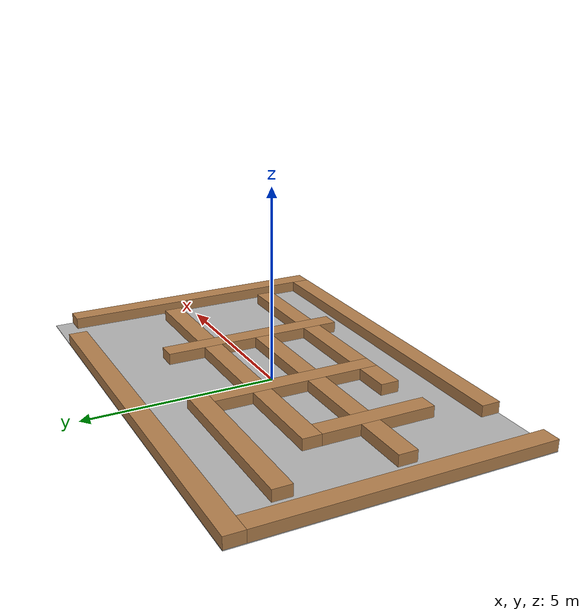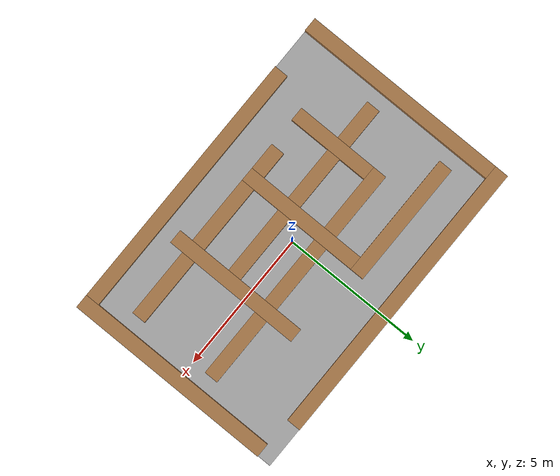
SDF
<?xml version='1.0'?>
<sdf version='1.7'><world name='default'>
  <gravity>0 0 -9.81</gravity>
  <scene><ambient>0.4 0.4 0.4 1</ambient></scene>
  <light name='sun' type='directional'>
    <pose>0 0 10 0 0 0</pose><diffuse>1 1 1 1</diffuse><specular>0.1 0.1 0.1 1</specular>
    <attenuation><range>120</range><constant>0.9</constant><linear>0.01</linear><quadratic>0.001</quadratic></attenuation>
    <direction>-0.5 0.5 -1</direction>
  </light>

    <model name='floor'><pose>0 0 -0.01 0 0 0</pose><static>true</static>
    <link name='l'>
      <collision name='c'><geometry><box><size>12.0 8.0 0.02</size></box></geometry></collision>
      <visual name='v'><geometry><box><size>12.0 8.0 0.02</size></box></geometry><material><ambient>0.30 0.30 0.30 1</ambient><diffuse>0.70 0.70 0.70 1</diffuse><specular>0.10 0.10 0.10 1</specular></material></visual>
    </link></model>

    <model name='wall_0_0'><pose>-0.75 3.75 0.15 0 0 0</pose><static>true</static>
    <link name='l'>
      <collision name='c'><geometry><box><size>10.5 0.5 0.3</size></box></geometry></collision>
      <visual name='v'><geometry><box><size>10.5 0.5 0.3</size></box></geometry><material><ambient>0.30 0.20 0.10 1</ambient><diffuse>0.70 0.50 0.30 1</diffuse><specular>0.10 0.10 0.10 1</specular></material></visual>
    </link></model>
    <model name='wall_1_0'><pose>-5.75 -0.25 0.15 0 0 0</pose><static>true</static>
    <link name='l'>
      <collision name='c'><geometry><box><size>0.5 7.5 0.3</size></box></geometry></collision>
      <visual name='v'><geometry><box><size>0.5 7.5 0.3</size></box></geometry><material><ambient>0.30 0.20 0.10 1</ambient><diffuse>0.70 0.50 0.30 1</diffuse><specular>0.10 0.10 0.10 1</specular></material></visual>
    </link></model>
    <model name='wall_1_23'><pose>5.75 -0.25 0.15 0 0 0</pose><static>true</static>
    <link name='l'>
      <collision name='c'><geometry><box><size>0.5 7.5 0.3</size></box></geometry></collision>
      <visual name='v'><geometry><box><size>0.5 7.5 0.3</size></box></geometry><material><ambient>0.30 0.20 0.10 1</ambient><diffuse>0.70 0.50 0.30 1</diffuse><specular>0.10 0.10 0.10 1</specular></material></visual>
    </link></model>
    <model name='wall_3_2'><pose>-2.75 2.25 0.15 0 0 0</pose><static>true</static>
    <link name='l'>
      <collision name='c'><geometry><box><size>4.5 0.5 0.3</size></box></geometry></collision>
      <visual name='v'><geometry><box><size>4.5 0.5 0.3</size></box></geometry><material><ambient>0.30 0.20 0.10 1</ambient><diffuse>0.70 0.50 0.30 1</diffuse><specular>0.10 0.10 0.10 1</specular></material></visual>
    </link></model>
    <model name='wall_4_10'><pose>-0.75 -0.25 0.15 0 0 0</pose><static>true</static>
    <link name='l'>
      <collision name='c'><geometry><box><size>0.5 4.5 0.3</size></box></geometry></collision>
      <visual name='v'><geometry><box><size>0.5 4.5 0.3</size></box></geometry><material><ambient>0.30 0.20 0.10 1</ambient><diffuse>0.70 0.50 0.30 1</diffuse><specular>0.10 0.10 0.10 1</specular></material></visual>
    </link></model>
    <model name='wall_4_16'><pose>2.25 -0.5 0.15 0 0 0</pose><static>true</static>
    <link name='l'>
      <collision name='c'><geometry><box><size>0.5 5.0 0.3</size></box></geometry></collision>
      <visual name='v'><geometry><box><size>0.5 5.0 0.3</size></box></geometry><material><ambient>0.30 0.20 0.10 1</ambient><diffuse>0.70 0.50 0.30 1</diffuse><specular>0.10 0.10 0.10 1</specular></material></visual>
    </link></model>
    <model name='wall_6_5'><pose>-2.25 0.75 0.15 0 0 0</pose><static>true</static>
    <link name='l'>
      <collision name='c'><geometry><box><size>2.5 0.5 0.3</size></box></geometry></collision>
      <visual name='v'><geometry><box><size>2.5 0.5 0.3</size></box></geometry><material><ambient>0.30 0.20 0.10 1</ambient><diffuse>0.70 0.50 0.30 1</diffuse><specular>0.10 0.10 0.10 1</specular></material></visual>
    </link></model>
    <model name='wall_6_11'><pose>0.75 0.75 0.15 0 0 0</pose><static>true</static>
    <link name='l'>
      <collision name='c'><geometry><box><size>2.5 0.5 0.3</size></box></geometry></collision>
      <visual name='v'><geometry><box><size>2.5 0.5 0.3</size></box></geometry><material><ambient>0.30 0.20 0.10 1</ambient><diffuse>0.70 0.50 0.30 1</diffuse><specular>0.10 0.10 0.10 1</specular></material></visual>
    </link></model>
    <model name='wall_6_17'><pose>3.75 0.75 0.15 0 0 0</pose><static>true</static>
    <link name='l'>
      <collision name='c'><geometry><box><size>2.5 0.5 0.3</size></box></geometry></collision>
      <visual name='v'><geometry><box><size>2.5 0.5 0.3</size></box></geometry><material><ambient>0.30 0.20 0.10 1</ambient><diffuse>0.70 0.50 0.30 1</diffuse><specular>0.10 0.10 0.10 1</specular></material></visual>
    </link></model>
    <model name='wall_7_5'><pose>-3.25 -1.0 0.15 0 0 0</pose><static>true</static>
    <link name='l'>
      <collision name='c'><geometry><box><size>0.5 3.0 0.3</size></box></geometry></collision>
      <visual name='v'><geometry><box><size>0.5 3.0 0.3</size></box></geometry><material><ambient>0.30 0.20 0.10 1</ambient><diffuse>0.70 0.50 0.30 1</diffuse><specular>0.10 0.10 0.10 1</specular></material></visual>
    </link></model>
    <model name='wall_9_2'><pose>-4.25 -0.75 0.15 0 0 0</pose><static>true</static>
    <link name='l'>
      <collision name='c'><geometry><box><size>1.5 0.5 0.3</size></box></geometry></collision>
      <visual name='v'><geometry><box><size>1.5 0.5 0.3</size></box></geometry><material><ambient>0.30 0.20 0.10 1</ambient><diffuse>0.70 0.50 0.30 1</diffuse><specular>0.10 0.10 0.10 1</specular></material></visual>
    </link></model>
    <model name='wall_9_6'><pose>-2.0 -0.75 0.15 0 0 0</pose><static>true</static>
    <link name='l'>
      <collision name='c'><geometry><box><size>2.0 0.5 0.3</size></box></geometry></collision>
      <visual name='v'><geometry><box><size>2.0 0.5 0.3</size></box></geometry><material><ambient>0.30 0.20 0.10 1</ambient><diffuse>0.70 0.50 0.30 1</diffuse><specular>0.10 0.10 0.10 1</specular></material></visual>
    </link></model>
    <model name='wall_9_11'><pose>0.75 -0.75 0.15 0 0 0</pose><static>true</static>
    <link name='l'>
      <collision name='c'><geometry><box><size>2.5 0.5 0.3</size></box></geometry></collision>
      <visual name='v'><geometry><box><size>2.5 0.5 0.3</size></box></geometry><material><ambient>0.30 0.20 0.10 1</ambient><diffuse>0.70 0.50 0.30 1</diffuse><specular>0.10 0.10 0.10 1</specular></material></visual>
    </link></model>
    <model name='wall_12_8'><pose>-1.5 -2.25 0.15 0 0 0</pose><static>true</static>
    <link name='l'>
      <collision name='c'><geometry><box><size>1.0 0.5 0.3</size></box></geometry></collision>
      <visual name='v'><geometry><box><size>1.0 0.5 0.3</size></box></geometry><material><ambient>0.30 0.20 0.10 1</ambient><diffuse>0.70 0.50 0.30 1</diffuse><specular>0.10 0.10 0.10 1</specular></material></visual>
    </link></model>
    <model name='wall_12_11'><pose>0.75 -2.25 0.15 0 0 0</pose><static>true</static>
    <link name='l'>
      <collision name='c'><geometry><box><size>2.5 0.5 0.3</size></box></geometry></collision>
      <visual name='v'><geometry><box><size>2.5 0.5 0.3</size></box></geometry><material><ambient>0.30 0.20 0.10 1</ambient><diffuse>0.70 0.50 0.30 1</diffuse><specular>0.10 0.10 0.10 1</specular></material></visual>
    </link></model>
    <model name='wall_12_17'><pose>3.75 -2.25 0.15 0 0 0</pose><static>true</static>
    <link name='l'>
      <collision name='c'><geometry><box><size>2.5 0.5 0.3</size></box></geometry></collision>
      <visual name='v'><geometry><box><size>2.5 0.5 0.3</size></box></geometry><material><ambient>0.30 0.20 0.10 1</ambient><diffuse>0.70 0.50 0.30 1</diffuse><specular>0.10 0.10 0.10 1</specular></material></visual>
    </link></model>
    <model name='wall_15_4'><pose>0.75 -3.75 0.15 0 0 0</pose><static>true</static>
    <link name='l'>
      <collision name='c'><geometry><box><size>9.5 0.5 0.3</size></box></geometry></collision>
      <visual name='v'><geometry><box><size>9.5 0.5 0.3</size></box></geometry><material><ambient>0.30 0.20 0.10 1</ambient><diffuse>0.70 0.50 0.30 1</diffuse><specular>0.10 0.10 0.10 1</specular></material></visual>
    </link></model></world></sdf>
